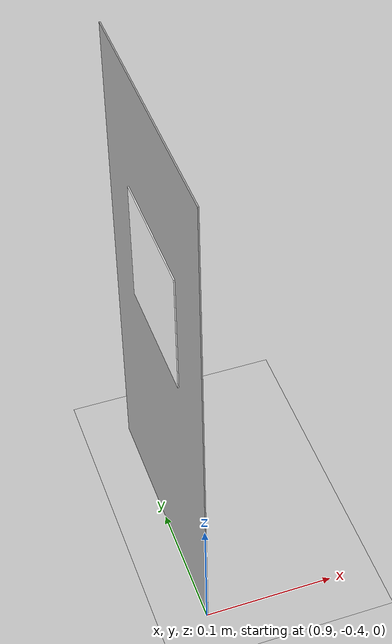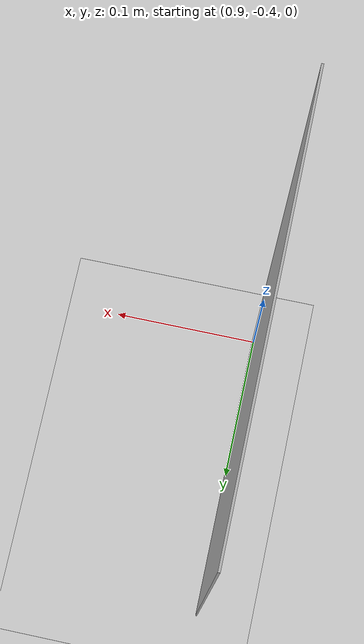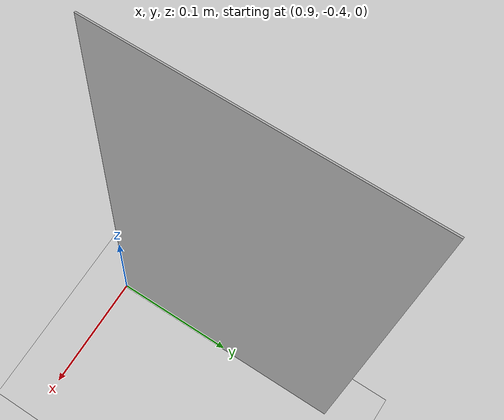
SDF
<?xml version='1.0' encoding='ASCII'?>
<sdf version='1.7'>
  <world name='warehouse'>
    <physics type="ode">
      <max_step_size>0.003</max_step_size>
      <real_time_factor>1.0</real_time_factor>
    </physics>
    <plugin name='ignition::gazebo::systems::Physics' filename='libignition-gazebo-physics-system.so'/>
    <plugin name='ignition::gazebo::systems::UserCommands' filename='libignition-gazebo-user-commands-system.so'/>
    <plugin name='ignition::gazebo::systems::SceneBroadcaster' filename='libignition-gazebo-scene-broadcaster-system.so'/>

    <scene>
      <ambient>1 1 1 1</ambient>
      <background>0.3 0.7 0.9 1</background>
      <shadows>0</shadows>
      <grid>false</grid>
    </scene>

    <light type="directional" name="sun">
      <cast_shadows>0</cast_shadows>
      <pose>-5 -3 10 0 0 0</pose>
      <diffuse>1 1 1 1</diffuse>
      <specular>1 1 1 1</specular>
      <direction>0 0 -1</direction>
    </light>

    <model name='ground_plane'>
      <static>true</static>
      <link name='link'>
        <collision name='collision'>
          <geometry>
            <plane>
              <normal>0.0 0.0 1</normal>
              <size>160 90</size>
            </plane>
          </geometry>
        </collision>
        <visual name='visual'>
          <geometry>
            <plane>
              <normal>0.0 0.0 1</normal>
              <size>160 90</size>
            </plane>
          </geometry>
          <material>
            <ambient>0.8 0.8 0.8 1</ambient>
            <diffuse>0.8 0.8 0.8 1</diffuse>
            <specular>0.8 0.8 0.8 1</specular>
          </material>
        </visual>
      </link>
      <pose>0 0 0 0 0 0</pose>
    </model>

    <model name="ar_block">
      <pose relative_to="world">0.9 -0.3 0 0 0 0</pose>
      <link name="aruco_link">
        <pose relative_to="__model__">0 0 0 0 0 0</pose>
        <inertial>
          <mass>10.0</mass>
          <inertia>
            <ixx>0.00417</ixx>
            <ixy>0</ixy>
            <ixz>0</ixz>
            <iyy>0.00417</iyy>
            <iyz>0</iyz>
            <izz>0.0067</izz>
          </inertia>
        </inertial>
        <visual name='tag'>
          <pose>-0.0005 0 0.25 0 0 0</pose>
          <geometry>
            <box>
              <size>0.001 0.1 0.1</size>
            </box>
          </geometry>
          <material>
            <albedo_map>materials/marker_0001.png</albedo_map>
            <pbr>
              <metal>
                <!-- TODO parameterize -->
                <albedo_map>materials/marker_0001.png</albedo_map>
              </metal>
            </pbr>
            <ambient>1.0 1.0 1.0 1.0</ambient>
            <diffuse>1.0 1.0 1.0 1.0</diffuse>
            <specular>1.0 1.0 1.0 1.0</specular>
          </material>
        </visual>
        <visual name='back'>
          <pose>0.0005 0 0.2 0 0 0</pose>
          <geometry>
            <box>
              <size>0.001 0.2 0.4</size>
            </box>
          </geometry>
          <material>
            <ambient>0.7 0.7 0.7 1.0</ambient>
            <diffuse>0.7 0.7 0.7 1.0</diffuse>
            <specular>0.7 0.7 0.7 1.0</specular>
          </material>
        </visual>
        <collision name='collision'>
          <pose>0 0 0.15 0 0 0</pose>
          <geometry>
            <box>
              <size>0.1 0.1 0.3</size>
            </box>
          </geometry>
        </collision>
      </link>
    </model>

    <model name="wyman">
      <link name="wyman_link">
        <pose>0 0 0 0 0 0</pose>
        <collision name="wyman_collision">
          <geometry>
            <mesh>
              <uri>meshes/wyman_decimated2.stl</uri>
              <scale>0.3 0.3 0.3</scale>
            </mesh>
          </geometry>
	  <surface>
	    <friction>
	      <ode>
          <mu>1.0</mu>
          <mu2>1.0</mu2>
	      </ode>
	    </friction>
	  </surface>
        </collision>
        <visual name="wyman">
          <geometry>
            <mesh>
              <uri>meshes/wyman_decimated2.stl</uri>
              <scale>0.3 0.3 0.3</scale>
            </mesh>
          </geometry>
          <cast_shadows>true</cast_shadows>
          <material>
            <ambient>0.8 0.8 0.8 1</ambient>
            <diffuse>0.8 0.8 0.8 1</diffuse>
            <specular>0.8 0.8 0.8 1</specular>
          </material>
        </visual>
      </link>
      <static>true</static>
    </model>

  </world>
</sdf>
